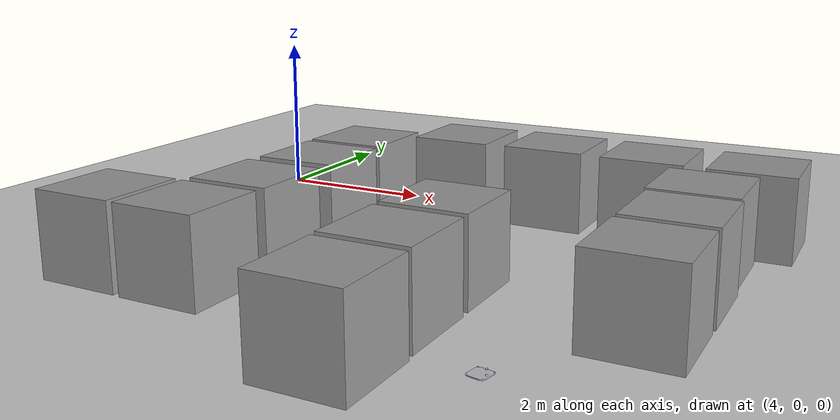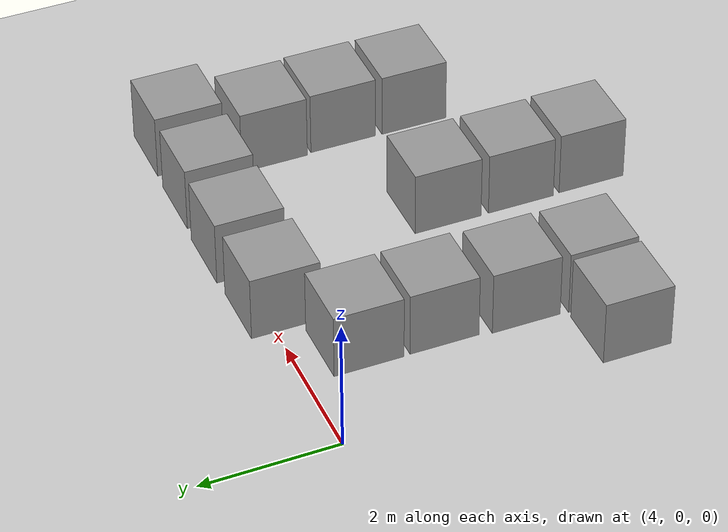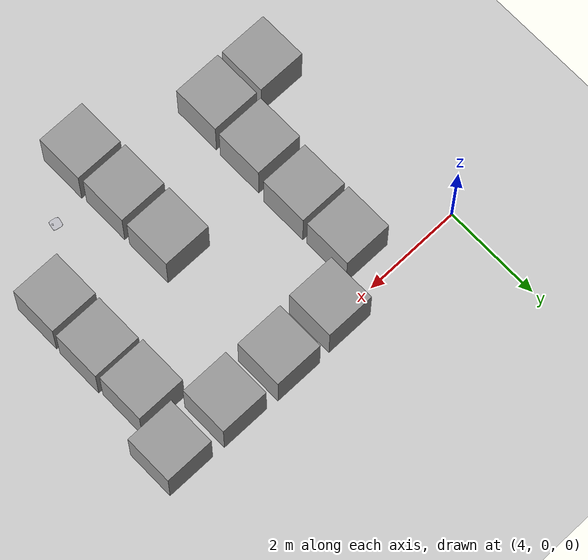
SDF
<sdf version="1.7">
 <world name="default">
  <light name="sun" type="directional">
   <pose>0 0 10 0 -0 0</pose>
   <diffuse>0.8 0.8 0.8 1</diffuse>
   <specular>0.2 0.2 0.2 1</specular>
   <attenuation>
    <range>1000</range>
    <constant>0.9</constant>
    <linear>0.01</linear>
    <quadratic>0.001</quadratic>
   </attenuation>
   <direction>-0.5 0.1 -0.9</direction>
   <spot><inner_angle>0</inner_angle><outer_angle>0</outer_angle><falloff>0</falloff></spot>
  </light>
  <model name="ground_plane">
   <static>1</static>
   <link name="link">
    <collision name="collision">
     <geometry><plane><normal>0 0 1</normal><size>100 100</size></plane></geometry>
     <surface>
      <contact><collide_bitmask>65535</collide_bitmask></contact>
      <friction><ode><mu>100</mu><mu2>50</mu2></ode></friction>
     </surface>
    </collision>
    <visual name="visual">
     <cast_shadows>0</cast_shadows>
     <geometry><plane><normal>0 0 1</normal><size>100 100</size></plane></geometry>
     <material>
      <script><uri>file://media/materials/scripts/gazebo.material</uri><name>Gazebo/Grey</name></script>
     </material>
    </visual>
   </link>
  </model>
  <gravity>0 0 -9.8</gravity>
  <magnetic_field>6e-06 2.3e-05 -4.2e-05</magnetic_field>
  <atmosphere type="adiabatic"/>
  <physics type="ode">
   <max_step_size>0.001</max_step_size>
   <real_time_factor>1</real_time_factor>
   <real_time_update_rate>1000</real_time_update_rate>
  </physics>
  <scene><ambient>0.4 0.4 0.4 1</ambient><background>0.7 0.7 0.7 1</background><shadows>1</shadows></scene>
  <spherical_coordinates>
   <surface_model>EARTH_WGS84</surface_model>
   <latitude_deg>0</latitude_deg>
   <longitude_deg>0</longitude_deg>
   <elevation>0</elevation>
   <heading_deg>0</heading_deg>
  </spherical_coordinates>
  <model name="fwomni">
   <link name="base_footprint">
    <inertial>
     <pose>0.002014 -0 0.005878 0 -0 0</pose>
     <mass>3.04689</mass>
     <inertia>
      <ixx>0.00914958</ixx>
      <ixy>-2.00784e-20</ixy>
      <ixz>-0.000169029</ixz>
      <iyy>0.00953652</iyy>
      <iyz>-2.13965e-20</iyz>
      <izz>0.0183689</izz>
     </inertia>
    </inertial>
    <collision name="base_footprint_fixed_joint_lump__base_link_collision">
     <pose>0 0 0.005 0 -0 0</pose>
     <geometry>
      <mesh>
       <scale>0.001 0.001 0.001</scale>
       <uri>/home/avdhoot/fwomni_ws/src/fwomni/meshes/base_link.stl</uri>
      </mesh>
     </geometry>
     <surface><friction><ode><mu>0.2</mu><mu2>0.2</mu2></ode></friction></surface>
    </collision>
    <collision name="base_footprint_fixed_joint_lump__rplidar_collision_1">
     <pose>0 0 0.045 0 -0 0</pose>
     <geometry>
      <mesh><scale>0.001 0.001 0.001</scale><uri>/home/avdhoot/fwomni_ws/src/fwomni/meshes/rplidar.stl</uri></mesh>
     </geometry>
     <surface><friction><ode><mu>0.2</mu><mu2>0.2</mu2></ode></friction></surface>
    </collision>
    <visual name="base_footprint_fixed_joint_lump__base_link_visual">
     <pose>0 0 0.005 0 -0 0</pose>
     <geometry>
      <mesh>
       <scale>0.001 0.001 0.001</scale>
       <uri>/home/avdhoot/fwomni_ws/src/fwomni/meshes/base_link.stl</uri>
      </mesh>
     </geometry>
     <material>
      <script><name>Gazebo/Silver</name><uri>file://media/materials/scripts/gazebo.material</uri></script>
     </material>
    </visual>
    <visual name="base_footprint_fixed_joint_lump__rplidar_visual_1">
     <pose>0 0 0.045 0 -0 0</pose>
     <geometry>
      <mesh><scale>0.001 0.001 0.001</scale><uri>/home/avdhoot/fwomni_ws/src/fwomni/meshes/rplidar.stl</uri></mesh>
     </geometry>
     <material>
      <script><name>Gazebo/Silver</name><uri>file://media/materials/scripts/gazebo.material</uri></script>
     </material>
    </visual>
    <self_collide>1</self_collide>
    <sensor name="head_hokuyo_sensor" type="ray">
     <visualize>0</visualize>
     <update_rate>20</update_rate>
     <ray>
      <scan>
       <horizontal>
        <samples>1400</samples>
        <resolution>1</resolution>
        <min_angle>-3.14159</min_angle>
        <max_angle>3.14159</max_angle>
       </horizontal>
       <vertical><samples>1</samples><min_angle>0</min_angle><max_angle>0</max_angle></vertical>
      </scan>
      <range><min>0.05</min><max>12</max><resolution>0.01</resolution></range>
      <noise><type>gaussian</type><mean>0</mean><stddev>0.01</stddev></noise>
     </ray>
     <plugin name="gazebo_ros_head_hokuyo_controller" filename="libgazebo_ros_laser.so">
      <topicName>laser/scan</topicName>
      <frameName>rplidar</frameName>
      <robotNamespace>/</robotNamespace>
     </plugin>
     <pose>0.065 0 0.07 0 -0 0</pose>
    </sensor>
   </link>
   <joint name="Cont1" type="revolute">
    <pose relative_to="base_footprint">0.085328 -0.085328 0.01 0 -0 0.785398</pose>
    <parent>base_footprint</parent>
    <child>front_right</child>
    <axis>
     <xyz>0 1 0</xyz>
     <limit><lower>-1e+16</lower><upper>1e+16</upper></limit>
     <dynamics><spring_reference>0</spring_reference><spring_stiffness>0</spring_stiffness></dynamics>
    </axis>
   </joint>
   <link name="front_right">
    <pose relative_to="Cont1">0 0 0 0 -0 0</pose>
    <inertial>
     <pose>0.003 -0 0 0 -0 0</pose>
     <mass>0.0147969</mass>
     <inertia><ixx>0</ixx><ixy>0</ixy><ixz>0</ixz><iyy>1e-06</iyy><iyz>0</iyz><izz>0</izz></inertia>
    </inertial>
    <collision name="front_right_collision">
     <pose>0 0 0 0 0 -1.5708</pose>
     <geometry>
      <mesh><scale>0.001 0.001 0.001</scale><uri>/home/avdhoot/fwomni_ws/src/fwomni/meshes/wheel.stl</uri></mesh>
     </geometry>
     <surface><friction><ode><mu>0.2</mu><mu2>0.2</mu2></ode></friction></surface>
    </collision>
    <visual name="front_right_visual">
     <pose>0 0 0 0 0 -1.5708</pose>
     <geometry>
      <mesh><scale>0.001 0.001 0.001</scale><uri>/home/avdhoot/fwomni_ws/src/fwomni/meshes/wheel.stl</uri></mesh>
     </geometry>
     <material>
      <script><name>Gazebo/Silver</name><uri>file://media/materials/scripts/gazebo.material</uri></script>
     </material>
    </visual>
    <self_collide>1</self_collide>
   </link>
   <joint name="Cont2" type="revolute">
    <pose relative_to="base_footprint">0.085328 0.085328 0.01 0 -0 2.35619</pose>
    <parent>base_footprint</parent>
    <child>front_left</child>
    <axis>
     <xyz>0 1 0</xyz>
     <limit><lower>-1e+16</lower><upper>1e+16</upper></limit>
     <dynamics><spring_reference>0</spring_reference><spring_stiffness>0</spring_stiffness></dynamics>
    </axis>
   </joint>
   <link name="front_left">
    <pose relative_to="Cont2">0 0 0 0 -0 0</pose>
    <inertial>
     <pose>0.003 -0 0 0 -0 0</pose>
     <mass>0.0147969</mass>
     <inertia><ixx>0</ixx><ixy>0</ixy><ixz>0</ixz><iyy>1e-06</iyy><iyz>0</iyz><izz>0</izz></inertia>
    </inertial>
    <collision name="front_left_collision">
     <pose>0 0 0 0 0 -1.5708</pose>
     <geometry>
      <mesh><scale>0.001 0.001 0.001</scale><uri>/home/avdhoot/fwomni_ws/src/fwomni/meshes/wheel.stl</uri></mesh>
     </geometry>
     <surface><friction><ode><mu>0.2</mu><mu2>0.2</mu2></ode></friction></surface>
    </collision>
    <visual name="front_left_visual">
     <pose>0 0 0 0 0 -1.5708</pose>
     <geometry>
      <mesh><scale>0.001 0.001 0.001</scale><uri>/home/avdhoot/fwomni_ws/src/fwomni/meshes/wheel.stl</uri></mesh>
     </geometry>
     <material>
      <script><name>Gazebo/Silver</name><uri>file://media/materials/scripts/gazebo.material</uri></script>
     </material>
    </visual>
    <self_collide>1</self_collide>
   </link>
   <joint name="Cont3" type="revolute">
    <pose relative_to="base_footprint">-0.085328 0.085328 0.01 0 0 -2.35619</pose>
    <parent>base_footprint</parent>
    <child>rear_left</child>
    <axis>
     <xyz>0 1 0</xyz>
     <limit><lower>-1e+16</lower><upper>1e+16</upper></limit>
     <dynamics><spring_reference>0</spring_reference><spring_stiffness>0</spring_stiffness></dynamics>
    </axis>
   </joint>
   <link name="rear_left">
    <pose relative_to="Cont3">0 0 0 0 -0 0</pose>
    <inertial>
     <pose>0.003 -0 0 0 -0 0</pose>
     <mass>0.0147969</mass>
     <inertia><ixx>0</ixx><ixy>0</ixy><ixz>0</ixz><iyy>1e-06</iyy><iyz>0</iyz><izz>0</izz></inertia>
    </inertial>
    <collision name="rear_left_collision">
     <pose>0 0 0 0 0 -1.5708</pose>
     <geometry>
      <mesh><scale>0.001 0.001 0.001</scale><uri>/home/avdhoot/fwomni_ws/src/fwomni/meshes/wheel.stl</uri></mesh>
     </geometry>
     <surface><friction><ode><mu>0.2</mu><mu2>0.2</mu2></ode></friction></surface>
    </collision>
    <visual name="rear_left_visual">
     <pose>0 0 0 0 0 -1.5708</pose>
     <geometry>
      <mesh><scale>0.001 0.001 0.001</scale><uri>/home/avdhoot/fwomni_ws/src/fwomni/meshes/wheel.stl</uri></mesh>
     </geometry>
     <material>
      <script><name>Gazebo/Silver</name><uri>file://media/materials/scripts/gazebo.material</uri></script>
     </material>
    </visual>
    <self_collide>1</self_collide>
   </link>
   <joint name="Cont4" type="revolute">
    <pose relative_to="base_footprint">-0.085328 -0.085328 0.01 0 0 -0.785398</pose>
    <parent>base_footprint</parent>
    <child>rear_right</child>
    <axis>
     <xyz>0 1 0</xyz>
     <limit><lower>-1e+16</lower><upper>1e+16</upper></limit>
     <dynamics><spring_reference>0</spring_reference><spring_stiffness>0</spring_stiffness></dynamics>
    </axis>
   </joint>
   <link name="rear_right">
    <pose relative_to="Cont4">0 0 0 0 -0 0</pose>
    <inertial>
     <pose>0.003 -0 0 0 -0 0</pose>
     <mass>0.0147969</mass>
     <inertia><ixx>0</ixx><ixy>0</ixy><ixz>0</ixz><iyy>1e-06</iyy><iyz>0</iyz><izz>0</izz></inertia>
    </inertial>
    <collision name="rear_right_collision">
     <pose>0 0 0 0 0 -1.5708</pose>
     <geometry>
      <mesh><scale>0.001 0.001 0.001</scale><uri>/home/avdhoot/fwomni_ws/src/fwomni/meshes/wheel.stl</uri></mesh>
     </geometry>
     <surface><friction><ode><mu>0.2</mu><mu2>0.2</mu2></ode></friction></surface>
    </collision>
    <visual name="rear_right_visual">
     <pose>0 0 0 0 0 -1.5708</pose>
     <geometry>
      <mesh><scale>0.001 0.001 0.001</scale><uri>/home/avdhoot/fwomni_ws/src/fwomni/meshes/wheel.stl</uri></mesh>
     </geometry>
     <material>
      <script><name>Gazebo/Silver</name><uri>file://media/materials/scripts/gazebo.material</uri></script>
     </material>
    </visual>
    <self_collide>1</self_collide>
   </link>
   <plugin name="control" filename="libgazebo_ros_control.so"><robotNamespace>/</robotNamespace></plugin>
   <static>0</static>
   <plugin name="mecanum_drive" filename="libgazebo_ros_planar_move.so">
    <commandTopic>cmd_vel</commandTopic>
    <odometryTopic>odom</odometryTopic>
    <odometryFrame>odom</odometryFrame>
    <odometryRate>100.0</odometryRate>
    <robotBaseFrame>base_footprint</robotBaseFrame>
    <publishTF>1</publishTF>
    <robotNamespace>/</robotNamespace>
   </plugin>
   <pose>9.19882 -4.6965 -2.7e-05 2e-06 7e-06 -0.193071</pose>
  </model>
  <model name="unit_box">
   <pose>5.73419 -0.881584 0.499995 0 1e-05 0</pose>
   <link name="link">
    <inertial>
     <mass>1</mass>
     <inertia>
      <ixx>0.166667</ixx>
      <ixy>0</ixy>
      <ixz>0</ixz>
      <iyy>0.166667</iyy>
      <iyz>0</iyz>
      <izz>0.166667</izz>
     </inertia>
    </inertial>
    <collision name="collision"><geometry><box><size>1 1 1</size></box></geometry></collision>
    <visual name="visual">
     <geometry><box><size>1 1 1</size></box></geometry>
     <material>
      <script><name>Gazebo/Grey</name><uri>file://media/materials/scripts/gazebo.material</uri></script>
     </material>
    </visual>
   </link>
  </model>
  <model name="unit_box_0">
   <pose>5.74502 -1.97276 0.499995 -1e-05 -0 -0</pose>
   <link name="link">
    <inertial>
     <mass>1</mass>
     <inertia>
      <ixx>0.166667</ixx>
      <ixy>0</ixy>
      <ixz>0</ixz>
      <iyy>0.166667</iyy>
      <iyz>0</iyz>
      <izz>0.166667</izz>
     </inertia>
    </inertial>
    <collision name="collision"><geometry><box><size>1 1 1</size></box></geometry></collision>
    <visual name="visual">
     <geometry><box><size>1 1 1</size></box></geometry>
     <material>
      <script><name>Gazebo/Grey</name><uri>file://media/materials/scripts/gazebo.material</uri></script>
     </material>
    </visual>
   </link>
  </model>
  <model name="unit_box_1">
   <pose>5.70059 -3.14662 0.499995 0 1e-05 0</pose>
   <link name="link">
    <inertial>
     <mass>1</mass>
     <inertia>
      <ixx>0.166667</ixx>
      <ixy>0</ixy>
      <ixz>0</ixz>
      <iyy>0.166667</iyy>
      <iyz>0</iyz>
      <izz>0.166667</izz>
     </inertia>
    </inertial>
    <collision name="collision"><geometry><box><size>1 1 1</size></box></geometry></collision>
    <visual name="visual">
     <geometry><box><size>1 1 1</size></box></geometry>
     <material>
      <script><name>Gazebo/Grey</name><uri>file://media/materials/scripts/gazebo.material</uri></script>
     </material>
    </visual>
   </link>
  </model>
  <model name="unit_box_2">
   <pose>5.68387 -4.26513 0.499995 -1e-05 -0 -0</pose>
   <link name="link">
    <inertial>
     <mass>1</mass>
     <inertia>
      <ixx>0.166667</ixx>
      <ixy>0</ixy>
      <ixz>0</ixz>
      <iyy>0.166667</iyy>
      <iyz>0</iyz>
      <izz>0.166667</izz>
     </inertia>
    </inertial>
    <collision name="collision"><geometry><box><size>1 1 1</size></box></geometry></collision>
    <visual name="visual">
     <geometry><box><size>1 1 1</size></box></geometry>
     <material>
      <script><name>Gazebo/Grey</name><uri>file://media/materials/scripts/gazebo.material</uri></script>
     </material>
    </visual>
   </link>
  </model>
  <model name="unit_box_3">
   <pose>6.85501 -0.152383 0.499995 0 1e-05 0</pose>
   <link name="link">
    <inertial>
     <mass>1</mass>
     <inertia>
      <ixx>0.166667</ixx>
      <ixy>0</ixy>
      <ixz>0</ixz>
      <iyy>0.166667</iyy>
      <iyz>0</iyz>
      <izz>0.166667</izz>
     </inertia>
    </inertial>
    <collision name="collision"><geometry><box><size>1 1 1</size></box></geometry></collision>
    <visual name="visual">
     <geometry><box><size>1 1 1</size></box></geometry>
     <material>
      <script><name>Gazebo/Grey</name><uri>file://media/materials/scripts/gazebo.material</uri></script>
     </material>
    </visual>
   </link>
  </model>
  <model name="unit_box_4">
   <pose>8.09849 -0.128 0.499995 -1e-05 -0 -0</pose>
   <link name="link">
    <inertial>
     <mass>1</mass>
     <inertia>
      <ixx>0.166667</ixx>
      <ixy>0</ixy>
      <ixz>0</ixz>
      <iyy>0.166667</iyy>
      <iyz>0</iyz>
      <izz>0.166667</izz>
     </inertia>
    </inertial>
    <collision name="collision"><geometry><box><size>1 1 1</size></box></geometry></collision>
    <visual name="visual">
     <geometry><box><size>1 1 1</size></box></geometry>
     <material>
      <script><name>Gazebo/Grey</name><uri>file://media/materials/scripts/gazebo.material</uri></script>
     </material>
    </visual>
   </link>
  </model>
  <model name="unit_box_5">
   <pose>9.34161 -0.158884 0.499995 0 1e-05 0</pose>
   <link name="link">
    <inertial>
     <mass>1</mass>
     <inertia>
      <ixx>0.166667</ixx>
      <ixy>0</ixy>
      <ixz>0</ixz>
      <iyy>0.166667</iyy>
      <iyz>0</iyz>
      <izz>0.166667</izz>
     </inertia>
    </inertial>
    <collision name="collision"><geometry><box><size>1 1 1</size></box></geometry></collision>
    <visual name="visual">
     <geometry><box><size>1 1 1</size></box></geometry>
     <material>
      <script><name>Gazebo/Grey</name><uri>file://media/materials/scripts/gazebo.material</uri></script>
     </material>
    </visual>
   </link>
  </model>
  <model name="unit_box_6">
   <pose>10.5988 -0.175981 0.499995 -1e-05 -0 -0</pose>
   <link name="link">
    <inertial>
     <mass>1</mass>
     <inertia>
      <ixx>0.166667</ixx>
      <ixy>0</ixy>
      <ixz>0</ixz>
      <iyy>0.166667</iyy>
      <iyz>0</iyz>
      <izz>0.166667</izz>
     </inertia>
    </inertial>
    <collision name="collision"><geometry><box><size>1 1 1</size></box></geometry></collision>
    <visual name="visual">
     <geometry><box><size>1 1 1</size></box></geometry>
     <material>
      <script><name>Gazebo/Grey</name><uri>file://media/materials/scripts/gazebo.material</uri></script>
     </material>
    </visual>
   </link>
  </model>
  <model name="unit_box_7">
   <pose>8.04238 -5.23782 0.499995 0 1e-05 0</pose>
   <link name="link">
    <inertial>
     <mass>1</mass>
     <inertia>
      <ixx>0.166667</ixx>
      <ixy>0</ixy>
      <ixz>0</ixz>
      <iyy>0.166667</iyy>
      <iyz>0</iyz>
      <izz>0.166667</izz>
     </inertia>
    </inertial>
    <collision name="collision"><geometry><box><size>1 1 1</size></box></geometry></collision>
    <visual name="visual">
     <geometry><box><size>1 1 1</size></box></geometry>
     <material>
      <script><name>Gazebo/Grey</name><uri>file://media/materials/scripts/gazebo.material</uri></script>
     </material>
    </visual>
   </link>
  </model>
  <model name="unit_box_8">
   <pose>8.01754 -4.13804 0.499995 -1e-05 -0 -0</pose>
   <link name="link">
    <inertial>
     <mass>1</mass>
     <inertia>
      <ixx>0.166667</ixx>
      <ixy>0</ixy>
      <ixz>0</ixz>
      <iyy>0.166667</iyy>
      <iyz>0</iyz>
      <izz>0.166667</izz>
     </inertia>
    </inertial>
    <collision name="collision"><geometry><box><size>1 1 1</size></box></geometry></collision>
    <visual name="visual">
     <geometry><box><size>1 1 1</size></box></geometry>
     <material>
      <script><name>Gazebo/Grey</name><uri>file://media/materials/scripts/gazebo.material</uri></script>
     </material>
    </visual>
   </link>
  </model>
  <model name="unit_box_9">
   <pose>8.00975 -3.02176 0.499995 0 1e-05 0</pose>
   <link name="link">
    <inertial>
     <mass>1</mass>
     <inertia>
      <ixx>0.166667</ixx>
      <ixy>0</ixy>
      <ixz>0</ixz>
      <iyy>0.166667</iyy>
      <iyz>0</iyz>
      <izz>0.166667</izz>
     </inertia>
    </inertial>
    <collision name="collision"><geometry><box><size>1 1 1</size></box></geometry></collision>
    <visual name="visual">
     <geometry><box><size>1 1 1</size></box></geometry>
     <material>
      <script><name>Gazebo/Grey</name><uri>file://media/materials/scripts/gazebo.material</uri></script>
     </material>
    </visual>
   </link>
  </model>
  <model name="unit_box_10">
   <pose>10.2141 -1.30065 0.499995 -1e-05 -0 -0</pose>
   <link name="link">
    <inertial>
     <mass>1</mass>
     <inertia>
      <ixx>0.166667</ixx>
      <ixy>0</ixy>
      <ixz>0</ixz>
      <iyy>0.166667</iyy>
      <iyz>0</iyz>
      <izz>0.166667</izz>
     </inertia>
    </inertial>
    <collision name="collision"><geometry><box><size>1 1 1</size></box></geometry></collision>
    <visual name="visual">
     <geometry><box><size>1 1 1</size></box></geometry>
     <material>
      <script><name>Gazebo/Grey</name><uri>file://media/materials/scripts/gazebo.material</uri></script>
     </material>
    </visual>
   </link>
  </model>
  <model name="unit_box_11">
   <pose>10.2491 -2.36986 0.499995 0 1e-05 0</pose>
   <link name="link">
    <inertial>
     <mass>1</mass>
     <inertia>
      <ixx>0.166667</ixx>
      <ixy>0</ixy>
      <ixz>0</ixz>
      <iyy>0.166667</iyy>
      <iyz>0</iyz>
      <izz>0.166667</izz>
     </inertia>
    </inertial>
    <collision name="collision"><geometry><box><size>1 1 1</size></box></geometry></collision>
    <visual name="visual">
     <geometry><box><size>1 1 1</size></box></geometry>
     <material>
      <script><name>Gazebo/Grey</name><uri>file://media/materials/scripts/gazebo.material</uri></script>
     </material>
    </visual>
   </link>
  </model>
  <model name="unit_box_12">
   <pose>10.2417 -3.46726 0.499995 -1e-05 -0 0</pose>
   <link name="link">
    <inertial>
     <mass>1</mass>
     <inertia>
      <ixx>0.166667</ixx>
      <ixy>0</ixy>
      <ixz>0</ixz>
      <iyy>0.166667</iyy>
      <iyz>0</iyz>
      <izz>0.166667</izz>
     </inertia>
    </inertial>
    <collision name="collision"><geometry><box><size>1 1 1</size></box></geometry></collision>
    <visual name="visual">
     <geometry><box><size>1 1 1</size></box></geometry>
     <material>
      <script><name>Gazebo/Grey</name><uri>file://media/materials/scripts/gazebo.material</uri></script>
     </material>
    </visual>
   </link>
  </model>
  <model name="unit_box_13">
   <pose>4.59222 -4.25232 0.5 0 -0 0</pose>
   <link name="link">
    <inertial>
     <mass>1</mass>
     <inertia>
      <ixx>0.166667</ixx>
      <ixy>0</ixy>
      <ixz>0</ixz>
      <iyy>0.166667</iyy>
      <iyz>0</iyz>
      <izz>0.166667</izz>
     </inertia>
    </inertial>
    <collision name="collision"><geometry><box><size>1 1 1</size></box></geometry></collision>
    <visual name="visual">
     <geometry><box><size>1 1 1</size></box></geometry>
     <material>
      <script><name>Gazebo/Grey</name><uri>file://media/materials/scripts/gazebo.material</uri></script>
     </material>
    </visual>
   </link>
  </model>
 </world>
</sdf>
